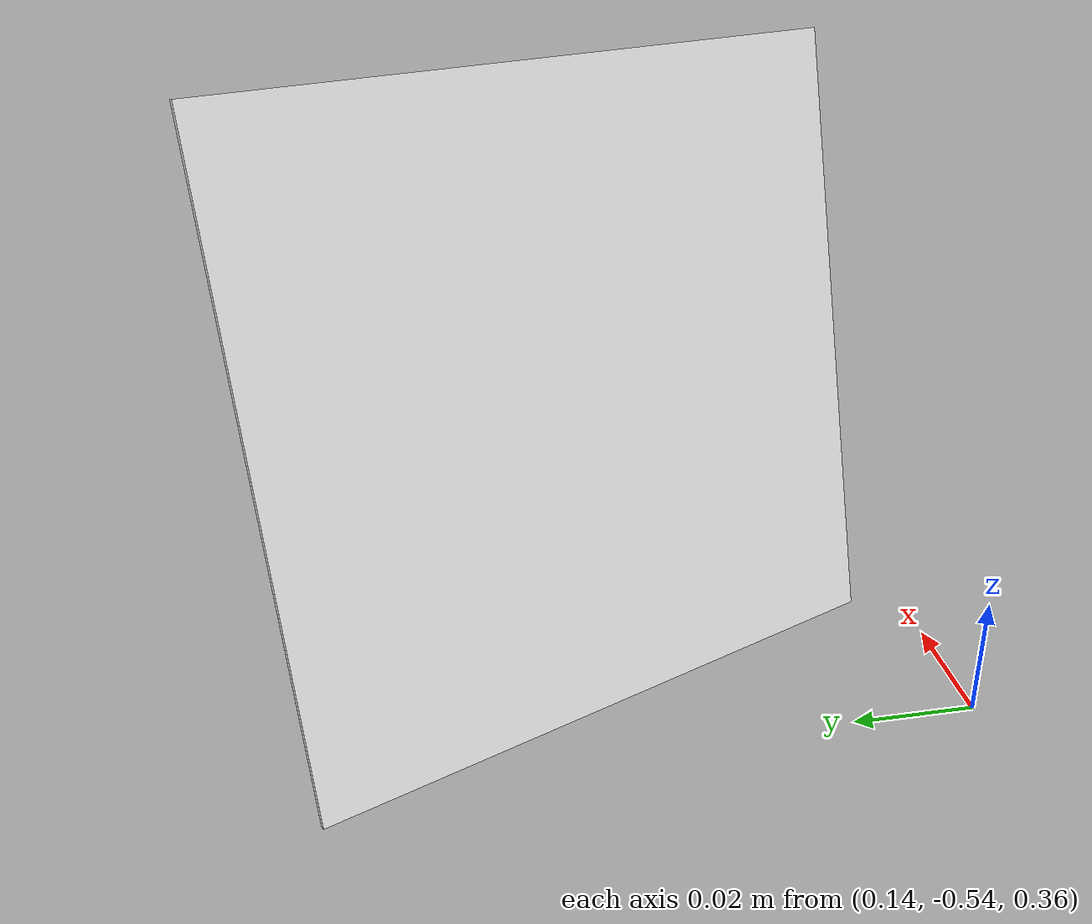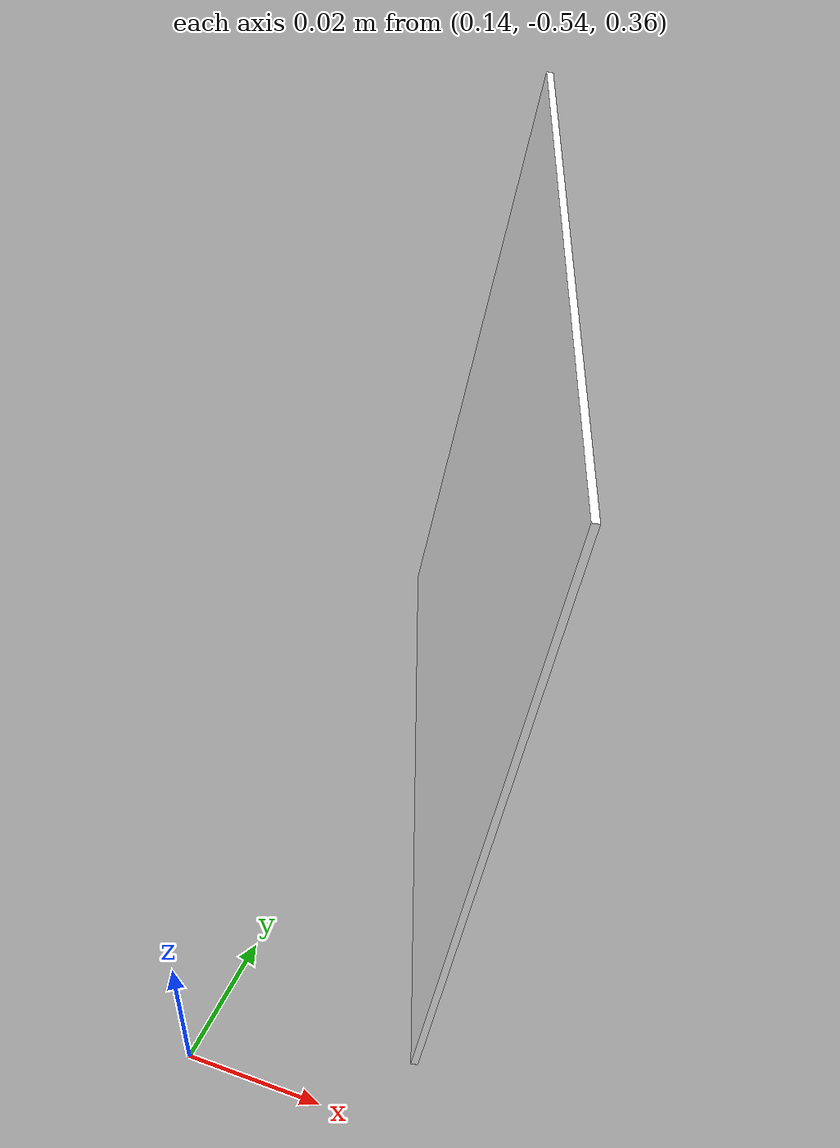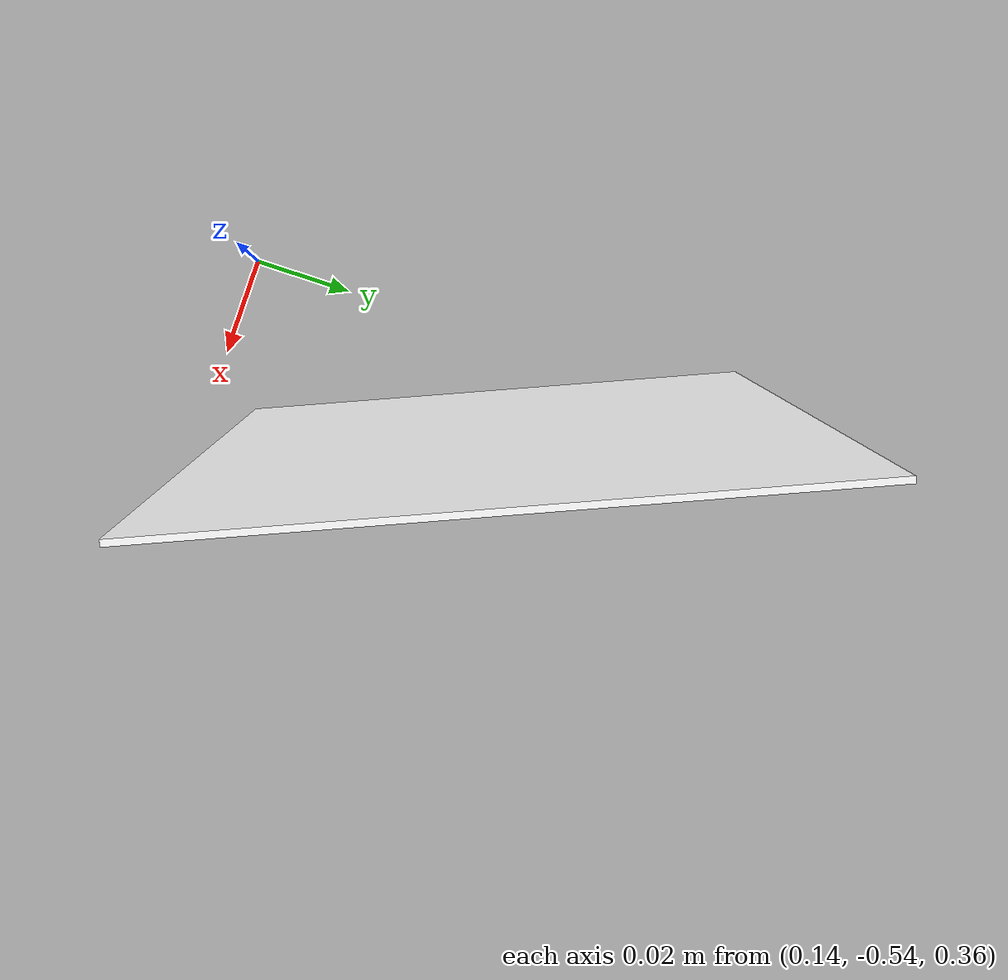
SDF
<?xml version="1.0" ?>
<sdf version="1.4">
  <!-- We use a custom world for the rrbot so that the camera angle is launched correctly -->

  <world name="default">
    <!-- Included light -->
    <include>
      <uri>https://fuel.gazebosim.org/1.0/OpenRobotics/models/Sun</uri>
    </include>

    <!-- Included model -->
    <include>
      <uri>https://fuel.gazebosim.org/1.0/OpenRobotics/models/Ground Plane</uri>
    </include>

    <include>
      <uri>
        model://aruco_tag
      </uri>
      <name>aruco_tag</name>
       <pose>0.16 -0.48 0.41 1.36 0.00 -1.17</pose>
    </include>

    <gravity>0 0 0</gravity>

    <!-- Focus camera on tall pendulum -->
    <gui fullscreen='0'>
      <camera name='user_camera'>
        <pose>4.927360 -4.376610 3.740080 0.000000 0.275643 2.356190</pose>
        <view_controller>orbit</view_controller>
      </camera>
    </gui>

    <!-- World control -->

  </world>
</sdf>

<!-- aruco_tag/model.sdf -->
<sdf version="1.9">
  <model name="aruco_tag">
    <static>true</static>
    <pose>0.16 -0.48 0.41 1.36 0.00 -1.17</pose> <link name="base">
      <visual name="tag_visual">
        <geometry>
          <box>
            <size>0.1 0.1 0.001</size>
          </box>
        </geometry>
        <material>
          <ambient>1 1 1 1</ambient>
          <diffuse>1 1 1 1</diffuse>
          <pbr>
            <metal>
              <albedo_map>model://aruco_tag/aruco-18.png</albedo_map>
            </metal>
          </pbr>
        </material>
      </visual>
      <collision name="tag_collision">
        <geometry>
          <box>
            <size>0.1 0.1 0.001</size>
          </box>
        </geometry>
      </collision>
    </link>
  </model>
</sdf>
